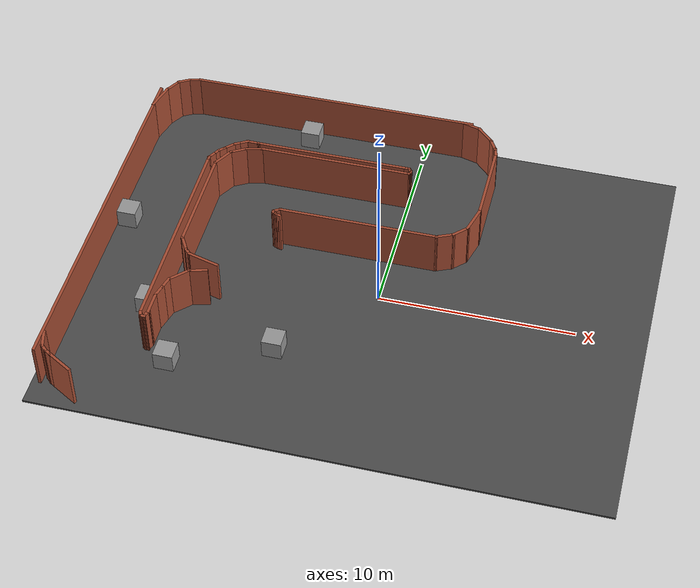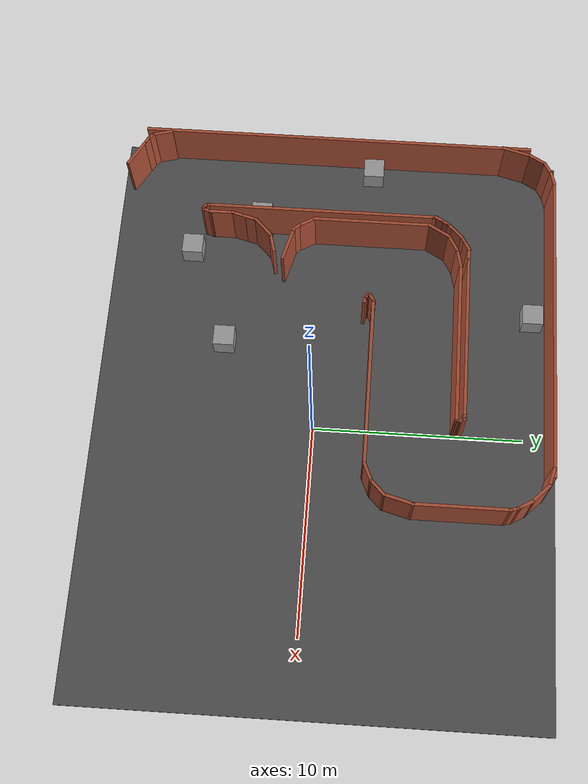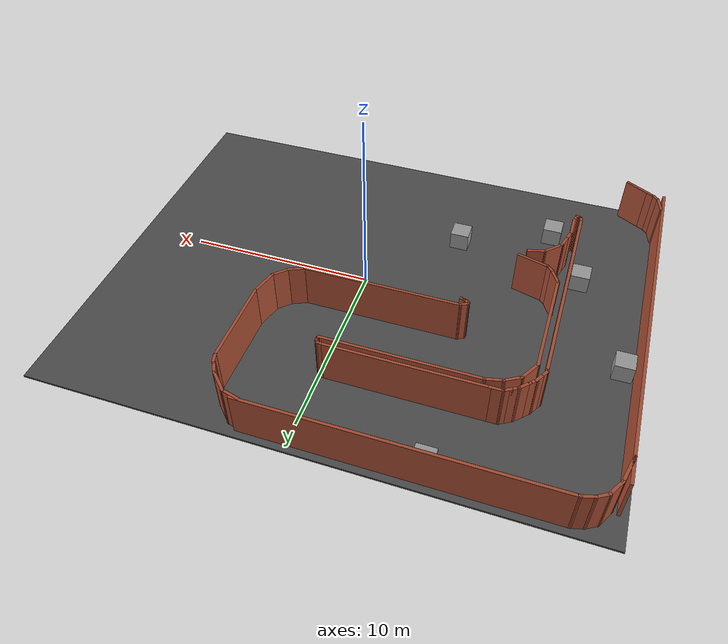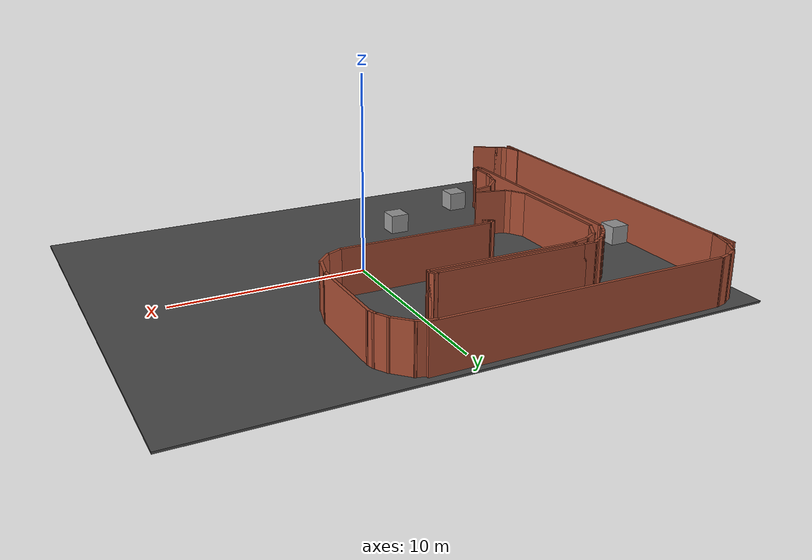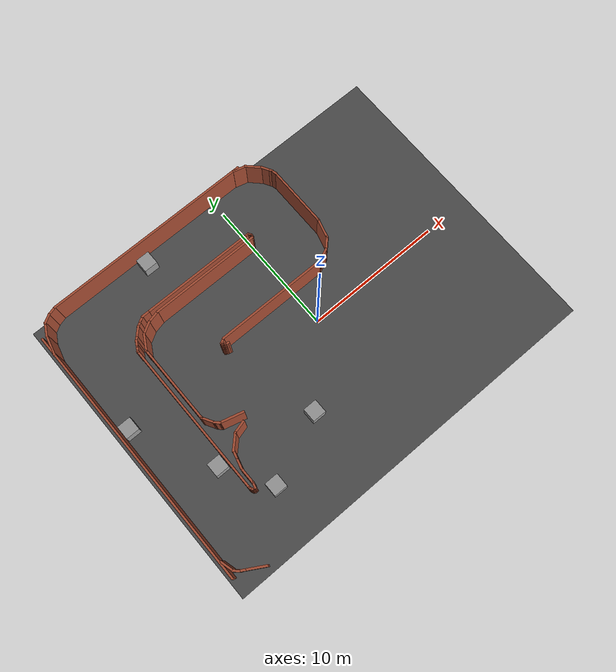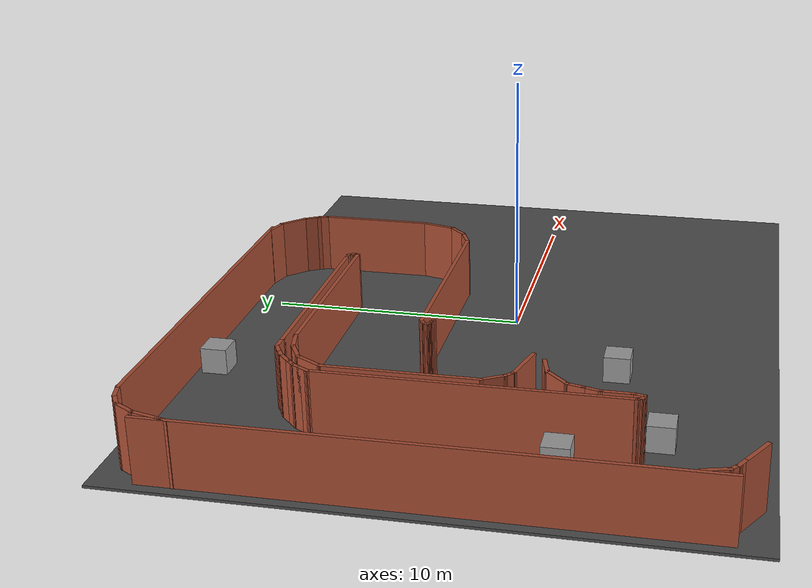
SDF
<sdf version="1.7">
 <world name="default">
  <model name="asphalt_plane">
   <static>1</static>
   <link name="link">
    <collision name="collision"><geometry><box><size>28.54 22.04 0.1</size></box></geometry></collision>
    <visual name="visual">
     <cast_shadows>0</cast_shadows>
     <geometry><box><size>28.54 22.04 0.1</size></box></geometry>
     <material>
      <script>
       <uri>model://asphalt_plane/materials/scripts</uri>
       <uri>model://asphalt_plane/materials/textures</uri>
       <name>vrc/asphalt</name>
      </script>
     </material>
    </visual>
   </link>
   <pose>-0.714703 0.532706 0 0 -0 0</pose>
  </model>
  <model name="unit_box_clone">
   <pose>-9.03001 -6.55583 0.550002 -4e-06 -0 0.000138</pose>
   <link name="link">
    <inertial>
     <mass>1</mass>
     <inertia>
      <ixx>0.166667</ixx>
      <ixy>0</ixy>
      <ixz>0</ixz>
      <iyy>0.166667</iyy>
      <iyz>0</iyz>
      <izz>0.166667</izz>
     </inertia>
    </inertial>
    <collision name="collision"><geometry><box><size>1 1 1</size></box></geometry></collision>
    <visual name="visual">
     <geometry><box><size>1 1 1</size></box></geometry>
     <material>
      <script><name>Gazebo/Grey</name><uri>file://media/materials/scripts/gazebo.material</uri></script>
     </material>
    </visual>
   </link>
  </model>
  <model name="unit_box_clone_12">
   <pose>-6.20194 10.3429 0.550002 -4e-06 -0 0.000137</pose>
   <link name="link">
    <inertial>
     <mass>1</mass>
     <inertia>
      <ixx>0.166667</ixx>
      <ixy>0</ixy>
      <ixz>0</ixz>
      <iyy>0.166667</iyy>
      <iyz>0</iyz>
      <izz>0.166667</izz>
     </inertia>
    </inertial>
    <collision name="collision"><geometry><box><size>1 1 1</size></box></geometry></collision>
    <visual name="visual">
     <geometry><box><size>1 1 1</size></box></geometry>
     <material>
      <script><name>Gazebo/Grey</name><uri>file://media/materials/scripts/gazebo.material</uri></script>
     </material>
    </visual>
   </link>
  </model>
  <model name="unit_box_clone_14">
   <pose>-13.9085 2.23417 0.550002 -4e-06 -0 0.000119</pose>
   <link name="link">
    <inertial>
     <mass>1</mass>
     <inertia>
      <ixx>0.166667</ixx>
      <ixy>0</ixy>
      <ixz>0</ixz>
      <iyy>0.166667</iyy>
      <iyz>0</iyz>
      <izz>0.166667</izz>
     </inertia>
    </inertial>
    <collision name="collision"><geometry><box><size>1 1 1</size></box></geometry></collision>
    <visual name="visual">
     <geometry><box><size>1 1 1</size></box></geometry>
     <material>
      <script><name>Gazebo/Grey</name><uri>file://media/materials/scripts/gazebo.material</uri></script>
     </material>
    </visual>
   </link>
  </model>
  <model name="unit_box_clone_16">
   <pose>-11.0431 -3.28249 0.550002 -4e-06 -0 0.000131</pose>
   <link name="link">
    <inertial>
     <mass>1</mass>
     <inertia>
      <ixx>0.166667</ixx>
      <ixy>0</ixy>
      <ixz>0</ixz>
      <iyy>0.166667</iyy>
      <iyz>0</iyz>
      <izz>0.166667</izz>
     </inertia>
    </inertial>
    <collision name="collision"><geometry><box><size>1 1 1</size></box></geometry></collision>
    <visual name="visual">
     <geometry><box><size>1 1 1</size></box></geometry>
     <material>
      <script><name>Gazebo/Grey</name><uri>file://media/materials/scripts/gazebo.material</uri></script>
     </material>
    </visual>
   </link>
  </model>
  <model name="unit_box_clone_clone">
   <pose>-4.15825 -4.55218 0.550002 -4e-06 -0 0.000142</pose>
   <link name="link">
    <inertial>
     <mass>1</mass>
     <inertia>
      <ixx>0.166667</ixx>
      <ixy>0</ixy>
      <ixz>0</ixz>
      <iyy>0.166667</iyy>
      <iyz>0</iyz>
      <izz>0.166667</izz>
     </inertia>
    </inertial>
    <collision name="collision"><geometry><box><size>1 1 1</size></box></geometry></collision>
    <visual name="visual">
     <geometry><box><size>1 1 1</size></box></geometry>
     <material>
      <script><name>Gazebo/Grey</name><uri>file://media/materials/scripts/gazebo.material</uri></script>
     </material>
    </visual>
   </link>
  </model>
  <model name="Untitled_3">
   <pose>-7.31397 0.360051 0 0 -0 0</pose>
   <link name="Wall_0">
    <collision name="Wall_0_Collision">
     <geometry><box><size>19.25 0.15 2.5</size></box></geometry>
     <pose>0 0 1.25 0 -0 0</pose>
    </collision>
    <visual name="Wall_0_Visual">
     <pose>0 0 1.25 0 -0 0</pose>
     <geometry><box><size>19.25 0.15 2.5</size></box></geometry>
     <material>
      <script><uri>file://media/materials/scripts/gazebo.material</uri><name>Gazebo/Bricks</name></script>
      <ambient>1 1 1 1</ambient>
     </material>
     <meta><layer>0</layer></meta>
    </visual>
    <pose>-7.23893 0 0 0 -0 -1.5708</pose>
   </link>
   <link name="Wall_2">
    <collision name="Wall_2_Collision">
     <geometry><box><size>11 0.15 2.5</size></box></geometry>
     <pose>0 0 1.25 0 -0 0</pose>
    </collision>
    <visual name="Wall_2_Visual">
     <pose>0 0 1.25 0 -0 0</pose>
     <geometry><box><size>11 0.15 2.5</size></box></geometry>
     <material>
      <script><uri>file://media/materials/scripts/gazebo.material</uri><name>Gazebo/Bricks</name></script>
      <ambient>1 1 1 1</ambient>
     </material>
     <meta><layer>0</layer></meta>
    </visual>
    <pose>-3.10649 -0.578189 0 0 -0 -1.5708</pose>
   </link>
   <static>1</static>
  </model>
  <model name="Untitled_4">
   <pose>-5.25205 -3.0446 0 0 -0 0</pose>
   <link name="Wall_0">
    <collision name="Wall_0_Collision">
     <geometry><box><size>1 0.15 2.5</size></box></geometry>
     <pose>0 0 1.25 0 -0 0</pose>
    </collision>
    <visual name="Wall_0_Visual">
     <pose>0 0 1.25 0 -0 0</pose>
     <geometry><box><size>1 0.15 2.5</size></box></geometry>
     <material>
      <script><uri>file://media/materials/scripts/gazebo.material</uri><name>Gazebo/Bricks</name></script>
      <ambient>1 1 1 1</ambient>
     </material>
     <meta><layer>0</layer></meta>
    </visual>
    <pose>-3.30821 0.542856 0 0 -0 -2.87979</pose>
   </link>
   <link name="Wall_10">
    <collision name="Wall_10_Collision">
     <geometry><box><size>0.25 0.15 2.5</size></box></geometry>
     <pose>0 0 1.25 0 -0 0</pose>
    </collision>
    <visual name="Wall_10_Visual">
     <pose>0 0 1.25 0 -0 0</pose>
     <geometry><box><size>0.25 0.15 2.5</size></box></geometry>
     <material>
      <script><uri>file://media/materials/scripts/gazebo.material</uri><name>Gazebo/Bricks</name></script>
      <ambient>1 1 1 1</ambient>
     </material>
     <meta><layer>0</layer></meta>
    </visual>
    <pose>-5.04101 -2.91715 0 0 -0 2.61799</pose>
   </link>
   <link name="Wall_11">
    <collision name="Wall_11_Collision">
     <geometry><box><size>0.25 0.15 2.5</size></box></geometry>
     <pose>0 0 1.25 0 -0 0</pose>
    </collision>
    <visual name="Wall_11_Visual">
     <pose>0 0 1.25 0 -0 0</pose>
     <geometry><box><size>0.25 0.15 2.5</size></box></geometry>
     <material>
      <script><uri>file://media/materials/scripts/gazebo.material</uri><name>Gazebo/Bricks</name></script>
      <ambient>1 1 1 1</ambient>
     </material>
     <meta><layer>0</layer></meta>
    </visual>
    <pose>-5.10931 -2.84884 0 0 -0 2.0944</pose>
   </link>
   <link name="Wall_12">
    <collision name="Wall_12_Collision">
     <geometry><box><size>0.25 0.15 2.5</size></box></geometry>
     <pose>0 0 1.25 0 -0 0</pose>
    </collision>
    <visual name="Wall_12_Visual">
     <pose>0 0 1.25 0 -0 0</pose>
     <geometry><box><size>0.25 0.15 2.5</size></box></geometry>
     <material>
      <script><uri>file://media/materials/scripts/gazebo.material</uri><name>Gazebo/Bricks</name></script>
      <ambient>1 1 1 1</ambient>
     </material>
     <meta><layer>0</layer></meta>
    </visual>
    <pose>-5.14726 -2.75725 0 0 -0 1.8326</pose>
   </link>
   <link name="Wall_3">
    <collision name="Wall_3_Collision">
     <geometry><box><size>1.25 0.15 2.5</size></box></geometry>
     <pose>0 0 1.25 0 -0 0</pose>
    </collision>
    <visual name="Wall_3_Visual">
     <pose>0 0 1.25 0 -0 0</pose>
     <geometry><box><size>1.25 0.15 2.5</size></box></geometry>
     <material>
      <script><uri>file://media/materials/scripts/gazebo.material</uri><name>Gazebo/Bricks</name></script>
      <ambient>1 1 1 1</ambient>
     </material>
     <meta><layer>0</layer></meta>
    </visual>
    <pose>-4.10763 0.043949 0 0 -0 -2.35619</pose>
   </link>
   <link name="Wall_4">
    <collision name="Wall_4_Collision">
     <geometry><box><size>0.75 0.15 2.5</size></box></geometry>
     <pose>0 0 1.25 0 -0 0</pose>
    </collision>
    <visual name="Wall_4_Visual">
     <pose>0 0 1.25 0 -0 0</pose>
     <geometry><box><size>0.75 0.15 2.5</size></box></geometry>
     <material>
      <script><uri>file://media/materials/scripts/gazebo.material</uri><name>Gazebo/Bricks</name></script>
      <ambient>1 1 1 1</ambient>
     </material>
     <meta><layer>0</layer></meta>
    </visual>
    <pose>-4.57419 -0.634738 0 0 -0 -1.8326</pose>
   </link>
   <link name="Wall_5">
    <collision name="Wall_5_Collision">
     <geometry><box><size>0.75 0.15 2.5</size></box></geometry>
     <pose>0 0 1.25 0 -0 0</pose>
    </collision>
    <visual name="Wall_5_Visual">
     <pose>0 0 1.25 0 -0 0</pose>
     <geometry><box><size>0.75 0.15 2.5</size></box></geometry>
     <material>
      <script><uri>file://media/materials/scripts/gazebo.material</uri><name>Gazebo/Bricks</name></script>
      <ambient>1 1 1 1</ambient>
     </material>
     <meta><layer>0</layer></meta>
    </visual>
    <pose>-4.72948 -1.21429 0 0 -0 -1.8326</pose>
   </link>
   <link name="Wall_6">
    <collision name="Wall_6_Collision">
     <geometry><box><size>1.25 0.15 2.5</size></box></geometry>
     <pose>0 0 1.25 0 -0 0</pose>
    </collision>
    <visual name="Wall_6_Visual">
     <pose>0 0 1.25 0 -0 0</pose>
     <geometry><box><size>1.25 0.15 2.5</size></box></geometry>
     <material>
      <script><uri>file://media/materials/scripts/gazebo.material</uri><name>Gazebo/Bricks</name></script>
      <ambient>1 1 1 1</ambient>
     </material>
     <meta><layer>0</layer></meta>
    </visual>
    <pose>-4.80713 -2.05407 0 0 -0 -1.5708</pose>
   </link>
   <link name="Wall_8">
    <collision name="Wall_8_Collision">
     <geometry><box><size>0.5 0.15 2.5</size></box></geometry>
     <pose>0 0 1.25 0 -0 0</pose>
    </collision>
    <visual name="Wall_8_Visual">
     <pose>0 0 1.25 0 -0 0</pose>
     <geometry><box><size>0.5 0.15 2.5</size></box></geometry>
     <material>
      <script><uri>file://media/materials/scripts/gazebo.material</uri><name>Gazebo/Bricks</name></script>
      <ambient>1 1 1 1</ambient>
     </material>
     <meta><layer>0</layer></meta>
    </visual>
    <pose>-4.85242 -2.77311 0 0 -0 -1.8326</pose>
   </link>
   <link name="Wall_9">
    <collision name="Wall_9_Collision">
     <geometry><box><size>0.25 0.15 2.5</size></box></geometry>
     <pose>0 0 1.25 0 -0 0</pose>
    </collision>
    <visual name="Wall_9_Visual">
     <pose>0 0 1.25 0 -0 0</pose>
     <geometry><box><size>0.25 0.15 2.5</size></box></geometry>
     <material>
      <script><uri>file://media/materials/scripts/gazebo.material</uri><name>Gazebo/Bricks</name></script>
      <ambient>1 1 1 1</ambient>
     </material>
     <meta><layer>0</layer></meta>
    </visual>
    <pose>-4.94771 -2.94215 0 0 -0 3.14159</pose>
   </link>
   <static>1</static>
  </model>
  <model name="Untitled_5">
   <pose>-7.27719 -5.03989 0 0 -0 0</pose>
   <link name="Wall_14">
    <collision name="Wall_14_Collision">
     <geometry><box><size>1 0.15 2.5</size></box></geometry>
     <pose>0 0 1.25 0 -0 0</pose>
    </collision>
    <visual name="Wall_14_Visual">
     <pose>0 0 1.25 0 -0 0</pose>
     <geometry><box><size>1 0.15 2.5</size></box></geometry>
     <material>
      <script><uri>file://media/materials/scripts/gazebo.material</uri><name>Gazebo/Bricks</name></script>
      <ambient>1 1 1 1</ambient>
     </material>
     <meta><layer>0</layer></meta>
    </visual>
    <pose>-7.07531 -3.42944 0 0 -0 -1.309</pose>
   </link>
   <link name="Wall_16">
    <collision name="Wall_16_Collision">
     <geometry><box><size>0.5 0.15 2.5</size></box></geometry>
     <pose>0 0 1.25 0 -0 0</pose>
    </collision>
    <visual name="Wall_16_Visual">
     <pose>0 0 1.25 0 -0 0</pose>
     <geometry><box><size>0.5 0.15 2.5</size></box></geometry>
     <material>
      <script><uri>file://media/materials/scripts/gazebo.material</uri><name>Gazebo/Bricks</name></script>
      <ambient>1 1 1 1</ambient>
     </material>
     <meta><layer>0</layer></meta>
    </visual>
    <pose>-6.84157 -3.9637 0 0 -0 -0.785398</pose>
   </link>
   <link name="Wall_17">
    <collision name="Wall_17_Collision">
     <geometry><box><size>0.5 0.15 2.5</size></box></geometry>
     <pose>0 0 1.25 0 -0 0</pose>
    </collision>
    <visual name="Wall_17_Visual">
     <pose>0 0 1.25 0 -0 0</pose>
     <geometry><box><size>0.5 0.15 2.5</size></box></geometry>
     <material>
      <script><uri>file://media/materials/scripts/gazebo.material</uri><name>Gazebo/Bricks</name></script>
      <ambient>1 1 1 1</ambient>
     </material>
     <meta><layer>0</layer></meta>
    </visual>
    <pose>-6.56627 -4.17494 0 0 -0 -0.523599</pose>
   </link>
   <link name="Wall_18">
    <collision name="Wall_18_Collision">
     <geometry><box><size>1.5 0.15 2.5</size></box></geometry>
     <pose>0 0 1.25 0 -0 0</pose>
    </collision>
    <visual name="Wall_18_Visual">
     <pose>0 0 1.25 0 -0 0</pose>
     <geometry><box><size>1.5 0.15 2.5</size></box></geometry>
     <material>
      <script><uri>file://media/materials/scripts/gazebo.material</uri><name>Gazebo/Bricks</name></script>
      <ambient>1 1 1 1</ambient>
     </material>
     <meta><layer>0</layer></meta>
    </visual>
    <pose>-5.83015 -4.59994 0 0 -0 -0.523599</pose>
   </link>
   <static>1</static>
  </model>
  <model name="Untitled_6">
   <pose>-6.08621 5.60962 0 0 -0 0</pose>
   <link name="Wall_0">
    <collision name="Wall_0_Collision">
     <geometry><box><size>8 0.15 2.5</size></box></geometry>
     <pose>0 0 1.25 0 -0 0</pose>
    </collision>
    <visual name="Wall_0_Visual">
     <pose>0 0 1.25 0 -0 0</pose>
     <geometry><box><size>8 0.15 2.5</size></box></geometry>
     <material>
      <script><uri>file://media/materials/scripts/gazebo.material</uri><name>Gazebo/Bricks</name></script>
      <ambient>1 1 1 1</ambient>
     </material>
     <meta><layer>0</layer></meta>
    </visual>
    <pose>1.81947 1.3961 0 0 -0 0</pose>
   </link>
   <link name="Wall_13">
    <collision name="Wall_13_Collision">
     <geometry><box><size>15.25 0.15 2.5</size></box></geometry>
     <pose>0 0 1.25 0 -0 0</pose>
    </collision>
    <visual name="Wall_13_Visual">
     <pose>0 0 1.25 0 -0 0</pose>
     <geometry><box><size>15.25 0.15 2.5</size></box></geometry>
     <material>
      <script><uri>file://media/materials/scripts/gazebo.material</uri><name>Gazebo/Bricks</name></script>
      <ambient>1 1 1 1</ambient>
     </material>
     <meta><layer>0</layer></meta>
    </visual>
    <pose>0.945216 5.51776 0 0 -0 0</pose>
   </link>
   <link name="Wall_16">
    <collision name="Wall_16_Collision">
     <geometry><box><size>0.75 0.15 2.5</size></box></geometry>
     <pose>0 0 1.25 0 -0 0</pose>
    </collision>
    <visual name="Wall_16_Visual">
     <pose>0 0 1.25 0 -0 0</pose>
     <geometry><box><size>0.75 0.15 2.5</size></box></geometry>
     <material>
      <script><uri>file://media/materials/scripts/gazebo.material</uri><name>Gazebo/Bricks</name></script>
      <ambient>1 1 1 1</ambient>
     </material>
     <meta><layer>0</layer></meta>
    </visual>
    <pose>-6.89456 5.44012 0 0 -0 -2.87979</pose>
   </link>
   <link name="Wall_17">
    <collision name="Wall_17_Collision">
     <geometry><box><size>0.75 0.15 2.5</size></box></geometry>
     <pose>0 0 1.25 0 -0 0</pose>
    </collision>
    <visual name="Wall_17_Visual">
     <pose>0 0 1.25 0 -0 0</pose>
     <geometry><box><size>0.75 0.15 2.5</size></box></geometry>
     <material>
      <script><uri>file://media/materials/scripts/gazebo.material</uri><name>Gazebo/Bricks</name></script>
      <ambient>1 1 1 1</ambient>
     </material>
     <meta><layer>0</layer></meta>
    </visual>
    <pose>-7.44415 5.21247 0 0 -0 -2.61799</pose>
   </link>
   <link name="Wall_2">
    <collision name="Wall_2_Collision">
     <geometry><box><size>0.75 0.15 2.5</size></box></geometry>
     <pose>0 0 1.25 0 -0 0</pose>
    </collision>
    <visual name="Wall_2_Visual">
     <pose>0 0 1.25 0 -0 0</pose>
     <geometry><box><size>0.75 0.15 2.5</size></box></geometry>
     <material>
      <script><uri>file://media/materials/scripts/gazebo.material</uri><name>Gazebo/Bricks</name></script>
      <ambient>1 1 1 1</ambient>
     </material>
     <meta><layer>0</layer></meta>
    </visual>
    <pose>-2.40553 1.3961 0 0 -0 3.14159</pose>
   </link>
   <link name="Wall_20">
    <collision name="Wall_20_Collision">
     <geometry><box><size>1 0.15 2.5</size></box></geometry>
     <pose>0 0 1.25 0 -0 0</pose>
    </collision>
    <visual name="Wall_20_Visual">
     <pose>0 0 1.25 0 -0 0</pose>
     <geometry><box><size>1 0.15 2.5</size></box></geometry>
     <material>
      <script><uri>file://media/materials/scripts/gazebo.material</uri><name>Gazebo/Bricks</name></script>
      <ambient>1 1 1 1</ambient>
     </material>
     <meta><layer>0</layer></meta>
    </visual>
    <pose>-7.91645 4.69441 0 0 -0 -2.0944</pose>
   </link>
   <link name="Wall_21">
    <collision name="Wall_21_Collision">
     <geometry><box><size>1.5 0.15 2.5</size></box></geometry>
     <pose>0 0 1.25 0 -0 0</pose>
    </collision>
    <visual name="Wall_21_Visual">
     <pose>0 0 1.25 0 -0 0</pose>
     <geometry><box><size>1.5 0.15 2.5</size></box></geometry>
     <material>
      <script><uri>file://media/materials/scripts/gazebo.material</uri><name>Gazebo/Bricks</name></script>
      <ambient>1 1 1 1</ambient>
     </material>
     <meta><layer>0</layer></meta>
    </visual>
    <pose>-8.30366 3.67435 0 0 -0 -1.8326</pose>
   </link>
   <link name="Wall_3">
    <collision name="Wall_3_Collision">
     <geometry><box><size>0.5 0.15 2.5</size></box></geometry>
     <pose>0 0 1.25 0 -0 0</pose>
    </collision>
    <visual name="Wall_3_Visual">
     <pose>0 0 1.25 0 -0 0</pose>
     <geometry><box><size>0.5 0.15 2.5</size></box></geometry>
     <material>
      <script><uri>file://media/materials/scripts/gazebo.material</uri><name>Gazebo/Bricks</name></script>
      <ambient>1 1 1 1</ambient>
     </material>
     <meta><layer>0</layer></meta>
    </visual>
    <pose>-2.85709 1.3086 0 0 -0 -2.61799</pose>
   </link>
   <link name="Wall_4">
    <collision name="Wall_4_Collision">
     <geometry><box><size>0.5 0.15 2.5</size></box></geometry>
     <pose>0 0 1.25 0 -0 0</pose>
    </collision>
    <visual name="Wall_4_Visual">
     <pose>0 0 1.25 0 -0 0</pose>
     <geometry><box><size>0.5 0.15 2.5</size></box></geometry>
     <material>
      <script><uri>file://media/materials/scripts/gazebo.material</uri><name>Gazebo/Bricks</name></script>
      <ambient>1 1 1 1</ambient>
     </material>
     <meta><layer>0</layer></meta>
    </visual>
    <pose>-3.1602 1.1336 0 0 -0 -2.61799</pose>
   </link>
   <link name="Wall_5">
    <collision name="Wall_5_Collision">
     <geometry><box><size>0.75 0.15 2.5</size></box></geometry>
     <pose>0 0 1.25 0 -0 0</pose>
    </collision>
    <visual name="Wall_5_Visual">
     <pose>0 0 1.25 0 -0 0</pose>
     <geometry><box><size>0.75 0.15 2.5</size></box></geometry>
     <material>
      <script><uri>file://media/materials/scripts/gazebo.material</uri><name>Gazebo/Bricks</name></script>
      <ambient>1 1 1 1</ambient>
     </material>
     <meta><layer>0</layer></meta>
    </visual>
    <pose>-3.52388 0.83397 0 0 -0 -2.35619</pose>
   </link>
   <link name="Wall_6">
    <collision name="Wall_6_Collision">
     <geometry><box><size>0.5 0.15 2.5</size></box></geometry>
     <pose>0 0 1.25 0 -0 0</pose>
    </collision>
    <visual name="Wall_6_Visual">
     <pose>0 0 1.25 0 -0 0</pose>
     <geometry><box><size>0.5 0.15 2.5</size></box></geometry>
     <material>
      <script><uri>file://media/materials/scripts/gazebo.material</uri><name>Gazebo/Bricks</name></script>
      <ambient>1 1 1 1</ambient>
     </material>
     <meta><layer>0</layer></meta>
    </visual>
    <pose>-3.85976 0.498094 0 0 -0 -2.35619</pose>
   </link>
   <link name="Wall_7">
    <collision name="Wall_7_Collision">
     <geometry><box><size>0.5 0.15 2.5</size></box></geometry>
     <pose>0 0 1.25 0 -0 0</pose>
    </collision>
    <visual name="Wall_7_Visual">
     <pose>0 0 1.25 0 -0 0</pose>
     <geometry><box><size>0.5 0.15 2.5</size></box></geometry>
     <material>
      <script><uri>file://media/materials/scripts/gazebo.material</uri><name>Gazebo/Bricks</name></script>
      <ambient>1 1 1 1</ambient>
     </material>
     <meta><layer>0</layer></meta>
    </visual>
    <pose>-4.071 0.222796 0 0 -0 -2.0944</pose>
   </link>
   <link name="Wall_8">
    <collision name="Wall_8_Collision">
     <geometry><box><size>0.5 0.15 2.5</size></box></geometry>
     <pose>0 0 1.25 0 -0 0</pose>
    </collision>
    <visual name="Wall_8_Visual">
     <pose>0 0 1.25 0 -0 0</pose>
     <geometry><box><size>0.5 0.15 2.5</size></box></geometry>
     <material>
      <script><uri>file://media/materials/scripts/gazebo.material</uri><name>Gazebo/Bricks</name></script>
      <ambient>1 1 1 1</ambient>
     </material>
     <meta><layer>0</layer></meta>
    </visual>
    <pose>-4.246 -0.080313 0 0 -0 -2.0944</pose>
   </link>
   <link name="Wall_9">
    <collision name="Wall_9_Collision">
     <geometry><box><size>0.25 0.15 2.5</size></box></geometry>
     <pose>0 0 1.25 0 -0 0</pose>
    </collision>
    <visual name="Wall_9_Visual">
     <pose>0 0 1.25 0 -0 0</pose>
     <geometry><box><size>0.25 0.15 2.5</size></box></geometry>
     <material>
      <script><uri>file://media/materials/scripts/gazebo.material</uri><name>Gazebo/Bricks</name></script>
      <ambient>1 1 1 1</ambient>
     </material>
     <meta><layer>0</layer></meta>
    </visual>
    <pose>-4.3335 -0.281868 0 0 -0 -1.5708</pose>
   </link>
   <static>1</static>
  </model>
  <model name="Untitled_7">
   <pose>-2.94452 4.58094 0 0 -0 0</pose>
   <link name="Wall_0">
    <collision name="Wall_0_Collision">
     <geometry><box><size>8 0.15 2.5</size></box></geometry>
     <pose>0 0 1.25 0 -0 0</pose>
    </collision>
    <visual name="Wall_0_Visual">
     <pose>0 0 1.25 0 -0 0</pose>
     <geometry><box><size>8 0.15 2.5</size></box></geometry>
     <material>
      <script><uri>file://media/materials/scripts/gazebo.material</uri><name>Gazebo/Bricks</name></script>
      <ambient>1 1 1 1</ambient>
     </material>
     <meta><layer>0</layer></meta>
    </visual>
    <pose>-0.98603 2.05748 0 0 -0 0</pose>
   </link>
   <link name="Wall_10">
    <collision name="Wall_10_Collision">
     <geometry><box><size>0.25 0.15 2.5</size></box></geometry>
     <pose>0 0 1.25 0 -0 0</pose>
    </collision>
    <visual name="Wall_10_Visual">
     <pose>0 0 1.25 0 -0 0</pose>
     <geometry><box><size>0.25 0.15 2.5</size></box></geometry>
     <material>
      <script><uri>file://media/materials/scripts/gazebo.material</uri><name>Gazebo/Bricks</name></script>
      <ambient>1 1 1 1</ambient>
     </material>
     <meta><layer>0</layer></meta>
    </visual>
    <pose>2.73897 2.41729 0 0 -0 3.14159</pose>
   </link>
   <link name="Wall_12">
    <collision name="Wall_12_Collision">
     <geometry><box><size>4.5 0.15 2.5</size></box></geometry>
     <pose>0 0 1.25 0 -0 0</pose>
    </collision>
    <visual name="Wall_12_Visual">
     <pose>0 0 1.25 0 -0 0</pose>
     <geometry><box><size>4.5 0.15 2.5</size></box></geometry>
     <material>
      <script><uri>file://media/materials/scripts/gazebo.material</uri><name>Gazebo/Bricks</name></script>
      <ambient>1 1 1 1</ambient>
     </material>
     <meta><layer>0</layer></meta>
    </visual>
    <pose>7.04184 2.39412 0 0 -0 1.5708</pose>
   </link>
   <link name="Wall_16">
    <collision name="Wall_16_Collision">
     <geometry><box><size>0.5 0.15 2.5</size></box></geometry>
     <pose>0 0 1.25 0 -0 0</pose>
    </collision>
    <visual name="Wall_16_Visual">
     <pose>0 0 1.25 0 -0 0</pose>
     <geometry><box><size>0.5 0.15 2.5</size></box></geometry>
     <material>
      <script><uri>file://media/materials/scripts/gazebo.material</uri><name>Gazebo/Bricks</name></script>
      <ambient>1 1 1 1</ambient>
     </material>
     <meta><layer>0</layer></meta>
    </visual>
    <pose>6.99654 4.73816 0 0 -0 1.8326</pose>
   </link>
   <link name="Wall_18">
    <collision name="Wall_18_Collision">
     <geometry><box><size>0.25 0.15 2.5</size></box></geometry>
     <pose>0 0 1.25 0 -0 0</pose>
    </collision>
    <visual name="Wall_18_Visual">
     <pose>0 0 1.25 0 -0 0</pose>
     <geometry><box><size>0.25 0.15 2.5</size></box></geometry>
     <material>
      <script><uri>file://media/materials/scripts/gazebo.material</uri><name>Gazebo/Bricks</name></script>
      <ambient>1 1 1 1</ambient>
     </material>
     <meta><layer>0</layer></meta>
    </visual>
    <pose>6.92625 4.9505 0 0 -0 2.0944</pose>
   </link>
   <link name="Wall_19">
    <collision name="Wall_19_Collision">
     <geometry><box><size>0.75 0.15 2.5</size></box></geometry>
     <pose>0 0 1.25 0 -0 0</pose>
    </collision>
    <visual name="Wall_19_Visual">
     <pose>0 0 1.25 0 -0 0</pose>
     <geometry><box><size>0.75 0.15 2.5</size></box></geometry>
     <material>
      <script><uri>file://media/materials/scripts/gazebo.material</uri><name>Gazebo/Bricks</name></script>
      <ambient>1 1 1 1</ambient>
     </material>
     <meta><layer>0</layer></meta>
    </visual>
    <pose>6.75125 5.25361 0 0 -0 2.0944</pose>
   </link>
   <link name="Wall_20">
    <collision name="Wall_20_Collision">
     <geometry><box><size>1.25 0.15 2.5</size></box></geometry>
     <pose>0 0 1.25 0 -0 0</pose>
    </collision>
    <visual name="Wall_20_Visual">
     <pose>0 0 1.25 0 -0 0</pose>
     <geometry><box><size>1.25 0.15 2.5</size></box></geometry>
     <material>
      <script><uri>file://media/materials/scripts/gazebo.material</uri><name>Gazebo/Bricks</name></script>
      <ambient>1 1 1 1</ambient>
     </material>
     <meta><layer>0</layer></meta>
    </visual>
    <pose>6.21234 5.90232 0 0 -0 2.35619</pose>
   </link>
   <link name="Wall_21">
    <collision name="Wall_21_Collision">
     <geometry><box><size>1 0.15 2.5</size></box></geometry>
     <pose>0 0 1.25 0 -0 0</pose>
    </collision>
    <visual name="Wall_21_Visual">
     <pose>0 0 1.25 0 -0 0</pose>
     <geometry><box><size>1 0.15 2.5</size></box></geometry>
     <material>
      <script><uri>file://media/materials/scripts/gazebo.material</uri><name>Gazebo/Bricks</name></script>
      <ambient>1 1 1 1</ambient>
     </material>
     <meta><layer>0</layer></meta>
    </visual>
    <pose>5.41291 6.40123 0 0 -0 2.87979</pose>
   </link>
   <link name="Wall_23">
    <collision name="Wall_23_Collision">
     <geometry><box><size>1.5 0.15 2.5</size></box></geometry>
     <pose>0 0 1.25 0 -0 0</pose>
    </collision>
    <visual name="Wall_23_Visual">
     <pose>0 0 1.25 0 -0 0</pose>
     <geometry><box><size>1.5 0.15 2.5</size></box></geometry>
     <material>
      <script><uri>file://media/materials/scripts/gazebo.material</uri><name>Gazebo/Bricks</name></script>
      <ambient>1 1 1 1</ambient>
     </material>
     <meta><layer>0</layer></meta>
    </visual>
    <pose>6.86713 -0.432877 0 0 -0 -1.8326</pose>
   </link>
   <link name="Wall_24">
    <collision name="Wall_24_Collision">
     <geometry><box><size>1 0.15 2.5</size></box></geometry>
     <pose>0 0 1.25 0 -0 0</pose>
    </collision>
    <visual name="Wall_24_Visual">
     <pose>0 0 1.25 0 -0 0</pose>
     <geometry><box><size>1 0.15 2.5</size></box></geometry>
     <material>
      <script><uri>file://media/materials/scripts/gazebo.material</uri><name>Gazebo/Bricks</name></script>
      <ambient>1 1 1 1</ambient>
     </material>
     <meta><layer>0</layer></meta>
    </visual>
    <pose>6.39191 -1.3854 0 0 -0 -2.35619</pose>
   </link>
   <link name="Wall_25">
    <collision name="Wall_25_Collision">
     <geometry><box><size>1.01814 0.15 2.5</size></box></geometry>
     <pose>0 0 1.25 0 -0 0</pose>
    </collision>
    <visual name="Wall_25_Visual">
     <pose>0 0 1.25 0 -0 0</pose>
     <geometry><box><size>1.01814 0.15 2.5</size></box></geometry>
     <material>
      <script><uri>file://media/materials/scripts/gazebo.material</uri><name>Gazebo/Bricks</name></script>
      <ambient>1 1 1 1</ambient>
     </material>
     <meta><layer>0</layer></meta>
    </visual>
    <pose>5.69472 -1.86217 0 0 -0 -2.72346</pose>
   </link>
   <link name="Wall_27">
    <collision name="Wall_27_Collision">
     <geometry><box><size>5.75 0.15 2.5</size></box></geometry>
     <pose>0 0 1.25 0 -0 0</pose>
    </collision>
    <visual name="Wall_27_Visual">
     <pose>0 0 1.25 0 -0 0</pose>
     <geometry><box><size>5.75 0.15 2.5</size></box></geometry>
     <material>
      <script><uri>file://media/materials/scripts/gazebo.material</uri><name>Gazebo/Bricks</name></script>
      <ambient>1 1 1 1</ambient>
     </material>
     <meta><layer>0</layer></meta>
    </visual>
    <pose>-7.03124 -2.31351 0 0 -0 -1.5708</pose>
   </link>
   <link name="Wall_29">
    <collision name="Wall_29_Collision">
     <geometry><box><size>1.25 0.15 2.5</size></box></geometry>
     <pose>0 0 1.25 0 -0 0</pose>
    </collision>
    <visual name="Wall_29_Visual">
     <pose>0 0 1.25 0 -0 0</pose>
     <geometry><box><size>1.25 0.15 2.5</size></box></geometry>
     <material>
      <script><uri>file://media/materials/scripts/gazebo.material</uri><name>Gazebo/Bricks</name></script>
      <ambient>1 1 1 1</ambient>
     </material>
     <meta><layer>0</layer></meta>
    </visual>
    <pose>-6.75624 0.962805 0 0 -0 1.0472</pose>
   </link>
   <link name="Wall_3">
    <collision name="Wall_3_Collision">
     <geometry><box><size>8.25 0.15 2.5</size></box></geometry>
     <pose>0 0 1.25 0 -0 0</pose>
    </collision>
    <visual name="Wall_3_Visual">
     <pose>0 0 1.25 0 -0 0</pose>
     <geometry><box><size>8.25 0.15 2.5</size></box></geometry>
     <material>
      <script><uri>file://media/materials/scripts/gazebo.material</uri><name>Gazebo/Bricks</name></script>
      <ambient>1 1 1 1</ambient>
     </material>
     <meta><layer>0</layer></meta>
    </visual>
    <pose>1.24804 -2.03843 0 0 -0 0</pose>
   </link>
   <link name="Wall_30">
    <collision name="Wall_30_Collision">
     <geometry><box><size>1 0.15 2.5</size></box></geometry>
     <pose>0 0 1.25 0 -0 0</pose>
    </collision>
    <visual name="Wall_30_Visual">
     <pose>0 0 1.25 0 -0 0</pose>
     <geometry><box><size>1 0.15 2.5</size></box></geometry>
     <material>
      <script><uri>file://media/materials/scripts/gazebo.material</uri><name>Gazebo/Bricks</name></script>
      <ambient>1 1 1 1</ambient>
     </material>
     <meta><layer>0</layer></meta>
    </visual>
    <pose>-6.11318 1.65162 0 0 -0 0.523599</pose>
   </link>
   <link name="Wall_31">
    <collision name="Wall_31_Collision">
     <geometry><box><size>1.00621 0.15 2.5</size></box></geometry>
     <pose>0 0 1.25 0 -0 0</pose>
    </collision>
    <visual name="Wall_31_Visual">
     <pose>0 0 1.25 0 -0 0</pose>
     <geometry><box><size>1.00621 0.15 2.5</size></box></geometry>
     <material>
      <script><uri>file://media/materials/scripts/gazebo.material</uri><name>Gazebo/Bricks</name></script>
      <ambient>1 1 1 1</ambient>
     </material>
     <meta><layer>0</layer></meta>
    </visual>
    <pose>-5.32808 1.9608 0 0 -0 0.227803</pose>
   </link>
   <link name="Wall_33">
    <collision name="Wall_33_Collision">
     <geometry><box><size>1 0.15 2.5</size></box></geometry>
     <pose>0 0 1.25 0 -0 0</pose>
    </collision>
    <visual name="Wall_33_Visual">
     <pose>0 0 1.25 0 -0 0</pose>
     <geometry><box><size>1 0.15 2.5</size></box></geometry>
     <material>
      <script><uri>file://media/materials/scripts/gazebo.material</uri><name>Gazebo/Bricks</name></script>
      <ambient>1 1 1 1</ambient>
     </material>
     <meta><layer>0</layer></meta>
    </visual>
    <pose>-6.81874 -5.48157 0 0 -0 -1.0472</pose>
   </link>
   <link name="Wall_34">
    <collision name="Wall_34_Collision">
     <geometry><box><size>0.5 0.15 2.5</size></box></geometry>
     <pose>0 0 1.25 0 -0 0</pose>
    </collision>
    <visual name="Wall_34_Visual">
     <pose>0 0 1.25 0 -0 0</pose>
     <geometry><box><size>0.5 0.15 2.5</size></box></geometry>
     <material>
      <script><uri>file://media/materials/scripts/gazebo.material</uri><name>Gazebo/Bricks</name></script>
      <ambient>1 1 1 1</ambient>
     </material>
     <meta><layer>0</layer></meta>
    </visual>
    <pose>-6.4825 -5.97337 0 0 -0 -0.785398</pose>
   </link>
   <link name="Wall_36">
    <collision name="Wall_36_Collision">
     <geometry><box><size>1.75 0.15 2.5</size></box></geometry>
     <pose>0 0 1.25 0 -0 0</pose>
    </collision>
    <visual name="Wall_36_Visual">
     <pose>0 0 1.25 0 -0 0</pose>
     <geometry><box><size>1.75 0.15 2.5</size></box></geometry>
     <material>
      <script><uri>file://media/materials/scripts/gazebo.material</uri><name>Gazebo/Bricks</name></script>
      <ambient>1 1 1 1</ambient>
     </material>
     <meta><layer>0</layer></meta>
    </visual>
    <pose>-5.58601 -6.30417 0 0 -0 -0.261799</pose>
   </link>
   <link name="Wall_39">
    <collision name="Wall_39_Collision">
     <geometry><box><size>0.5 0.15 2.5</size></box></geometry>
     <pose>0 0 1.25 0 -0 0</pose>
    </collision>
    <visual name="Wall_39_Visual">
     <pose>0 0 1.25 0 -0 0</pose>
     <geometry><box><size>0.5 0.15 2.5</size></box></geometry>
     <material>
      <script><uri>file://media/materials/scripts/gazebo.material</uri><name>Gazebo/Bricks</name></script>
      <ambient>1 1 1 1</ambient>
     </material>
     <meta><layer>0</layer></meta>
    </visual>
    <pose>-2.95351 -2.12593 0 0 -0 -2.61799</pose>
   </link>
   <link name="Wall_40">
    <collision name="Wall_40_Collision">
     <geometry><box><size>0.25 0.15 2.5</size></box></geometry>
     <pose>0 0 1.25 0 -0 0</pose>
    </collision>
    <visual name="Wall_40_Visual">
     <pose>0 0 1.25 0 -0 0</pose>
     <geometry><box><size>0.25 0.15 2.5</size></box></geometry>
     <material>
      <script><uri>file://media/materials/scripts/gazebo.material</uri><name>Gazebo/Bricks</name></script>
      <ambient>1 1 1 1</ambient>
     </material>
     <meta><layer>0</layer></meta>
    </visual>
    <pose>-3.10507 -2.26343 0 0 -0 -1.5708</pose>
   </link>
   <link name="Wall_41">
    <collision name="Wall_41_Collision">
     <geometry><box><size>0.25 0.15 2.5</size></box></geometry>
     <pose>0 0 1.25 0 -0 0</pose>
    </collision>
    <visual name="Wall_41_Visual">
     <pose>0 0 1.25 0 -0 0</pose>
     <geometry><box><size>0.25 0.15 2.5</size></box></geometry>
     <material>
      <script><uri>file://media/materials/scripts/gazebo.material</uri><name>Gazebo/Bricks</name></script>
      <ambient>1 1 1 1</ambient>
     </material>
     <meta><layer>0</layer></meta>
    </visual>
    <pose>-3.06176 -2.33843 0 0 -0 -0.523599</pose>
   </link>
   <link name="Wall_42">
    <collision name="Wall_42_Collision">
     <geometry><box><size>0.15 0.15 2.5</size></box></geometry>
     <pose>0 0 1.25 0 -0 0</pose>
    </collision>
    <visual name="Wall_42_Visual">
     <pose>0 0 1.25 0 -0 0</pose>
     <geometry><box><size>0.15 0.15 2.5</size></box></geometry>
     <material>
      <script><uri>file://media/materials/scripts/gazebo.material</uri><name>Gazebo/Bricks</name></script>
      <ambient>1 1 1 1</ambient>
     </material>
     <meta><layer>0</layer></meta>
    </visual>
    <pose>-3.01846 -2.36343 0 0 -0 0</pose>
   </link>
   <link name="Wall_44">
    <collision name="Wall_44_Collision">
     <geometry><box><size>0.25 0.15 2.5</size></box></geometry>
     <pose>0 0 1.25 0 -0 0</pose>
    </collision>
    <visual name="Wall_44_Visual">
     <pose>0 0 1.25 0 -0 0</pose>
     <geometry><box><size>0.25 0.15 2.5</size></box></geometry>
     <material>
      <script><uri>file://media/materials/scripts/gazebo.material</uri><name>Gazebo/Bricks</name></script>
      <ambient>1 1 1 1</ambient>
     </material>
     <meta><layer>0</layer></meta>
    </visual>
    <pose>-2.97516 -2.38843 0 0 -0 -0.523599</pose>
   </link>
   <link name="Wall_45">
    <collision name="Wall_45_Collision">
     <geometry><box><size>0.25 0.15 2.5</size></box></geometry>
     <pose>0 0 1.25 0 -0 0</pose>
    </collision>
    <visual name="Wall_45_Visual">
     <pose>0 0 1.25 0 -0 0</pose>
     <geometry><box><size>0.25 0.15 2.5</size></box></geometry>
     <material>
      <script><uri>file://media/materials/scripts/gazebo.material</uri><name>Gazebo/Bricks</name></script>
      <ambient>1 1 1 1</ambient>
     </material>
     <meta><layer>0</layer></meta>
    </visual>
    <pose>-2.88356 -2.42637 0 0 -0 -0.261799</pose>
   </link>
   <link name="Wall_46">
    <collision name="Wall_46_Collision">
     <geometry><box><size>0.25 0.15 2.5</size></box></geometry>
     <pose>0 0 1.25 0 -0 0</pose>
    </collision>
    <visual name="Wall_46_Visual">
     <pose>0 0 1.25 0 -0 0</pose>
     <geometry><box><size>0.25 0.15 2.5</size></box></geometry>
     <material>
      <script><uri>file://media/materials/scripts/gazebo.material</uri><name>Gazebo/Bricks</name></script>
      <ambient>1 1 1 1</ambient>
     </material>
     <meta><layer>0</layer></meta>
    </visual>
    <pose>-2.78697 -2.45225 0 0 -0 -0.261799</pose>
   </link>
   <link name="Wall_5">
    <collision name="Wall_5_Collision">
     <geometry><box><size>0.25 0.15 2.5</size></box></geometry>
     <pose>0 0 1.25 0 -0 0</pose>
    </collision>
    <visual name="Wall_5_Visual">
     <pose>0 0 1.25 0 -0 0</pose>
     <geometry><box><size>0.25 0.15 2.5</size></box></geometry>
     <material>
      <script><uri>file://media/materials/scripts/gazebo.material</uri><name>Gazebo/Bricks</name></script>
      <ambient>1 1 1 1</ambient>
     </material>
     <meta><layer>0</layer></meta>
    </visual>
    <pose>2.96397 2.10078 0 0 -0 1.0472</pose>
   </link>
   <link name="Wall_6">
    <collision name="Wall_6_Collision">
     <geometry><box><size>0.25 0.15 2.5</size></box></geometry>
     <pose>0 0 1.25 0 -0 0</pose>
    </collision>
    <visual name="Wall_6_Visual">
     <pose>0 0 1.25 0 -0 0</pose>
     <geometry><box><size>0.25 0.15 2.5</size></box></geometry>
     <material>
      <script><uri>file://media/materials/scripts/gazebo.material</uri><name>Gazebo/Bricks</name></script>
      <ambient>1 1 1 1</ambient>
     </material>
     <meta><layer>0</layer></meta>
    </visual>
    <pose>2.98897 2.19408 0 0 -0 1.5708</pose>
   </link>
   <link name="Wall_7">
    <collision name="Wall_7_Collision">
     <geometry><box><size>0.25 0.15 2.5</size></box></geometry>
     <pose>0 0 1.25 0 -0 0</pose>
    </collision>
    <visual name="Wall_7_Visual">
     <pose>0 0 1.25 0 -0 0</pose>
     <geometry><box><size>0.25 0.15 2.5</size></box></geometry>
     <material>
      <script><uri>file://media/materials/scripts/gazebo.material</uri><name>Gazebo/Bricks</name></script>
      <ambient>1 1 1 1</ambient>
     </material>
     <meta><layer>0</layer></meta>
    </visual>
    <pose>2.96397 2.28739 0 0 -0 2.0944</pose>
   </link>
   <link name="Wall_8">
    <collision name="Wall_8_Collision">
     <geometry><box><size>0.25 0.15 2.5</size></box></geometry>
     <pose>0 0 1.25 0 -0 0</pose>
    </collision>
    <visual name="Wall_8_Visual">
     <pose>0 0 1.25 0 -0 0</pose>
     <geometry><box><size>0.25 0.15 2.5</size></box></geometry>
     <material>
      <script><uri>file://media/materials/scripts/gazebo.material</uri><name>Gazebo/Bricks</name></script>
      <ambient>1 1 1 1</ambient>
     </material>
     <meta><layer>0</layer></meta>
    </visual>
    <pose>2.91397 2.37399 0 0 -0 2.0944</pose>
   </link>
   <static>1</static>
  </model>
 </world>
</sdf>
